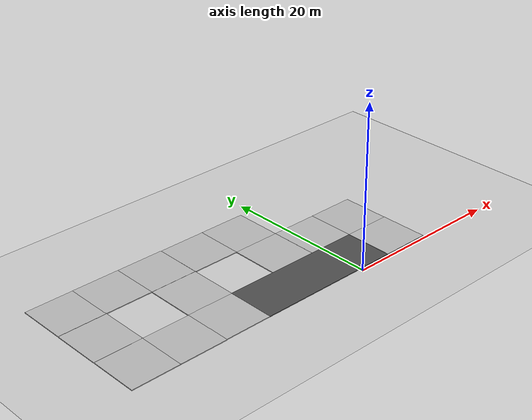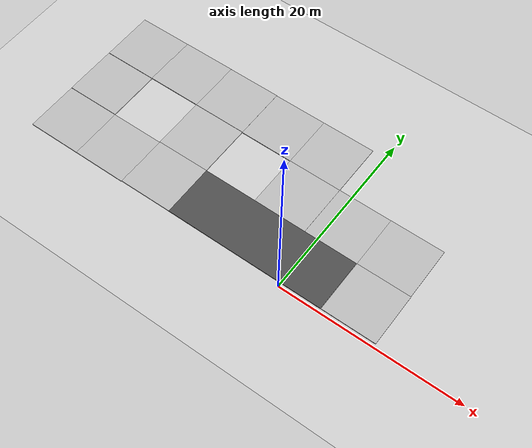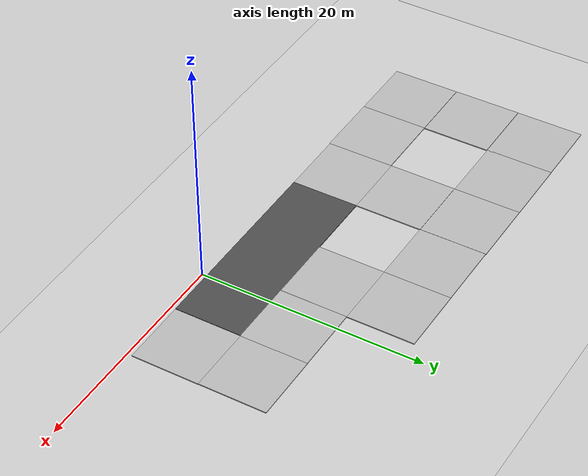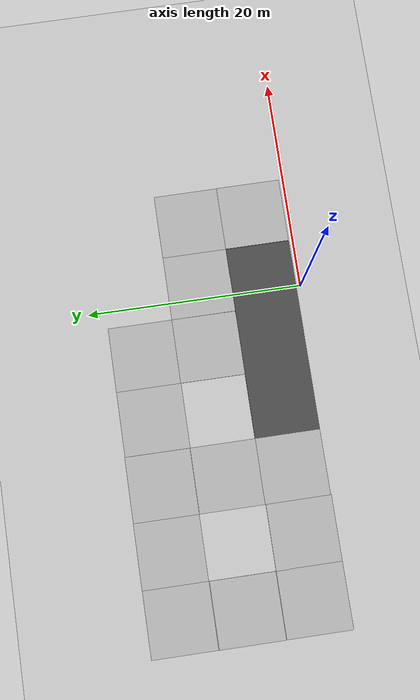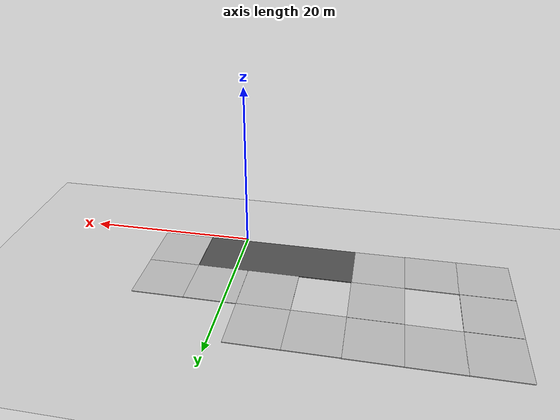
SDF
<sdf version="1.7">
 <world name="default">
  <light name="sun" type="directional">
   <cast_shadows>0</cast_shadows>
   <pose>0 0 10 0 -0 0</pose>
   <diffuse>0.8 0.8 0.8 1</diffuse>
   <specular>0.2 0.2 0.2 1</specular>
   <attenuation>
    <range>1000</range>
    <constant>0.9</constant>
    <linear>0.01</linear>
    <quadratic>0.001</quadratic>
   </attenuation>
   <direction>-0.5 0.1 -0.9</direction>
   <spot><inner_angle>0</inner_angle><outer_angle>0</outer_angle><falloff>0</falloff></spot>
  </light>
  <model name="ground_plane">
   <static>1</static>
   <link name="link">
    <collision name="collision">
     <geometry><plane><normal>0 0 1</normal><size>100 100</size></plane></geometry>
     <surface><friction><ode><mu>100</mu><mu2>50</mu2></ode></friction></surface>
    </collision>
    <visual name="visual">
     <cast_shadows>0</cast_shadows>
     <geometry><plane><normal>0 0 1</normal><size>100 100</size></plane></geometry>
     <material>
      <script><uri>file://media/materials/scripts/gazebo.material</uri><name>Gazebo/Grey</name></script>
     </material>
    </visual>
   </link>
  </model>
  <physics name="ode_70iters" type="ode">
   <real_time_update_rate>1000</real_time_update_rate>
   <ode>
    <solver>
     <type>quick</type>
     <iters>70</iters>
     <sor>1.3</sor>
     <use_dynamic_moi_rescaling>0</use_dynamic_moi_rescaling>
    </solver>
    <constraints>
     <cfm>0</cfm>
     <erp>0.2</erp>
     <contact_max_correcting_vel>100</contact_max_correcting_vel>
     <contact_surface_layer>0.001</contact_surface_layer>
    </constraints>
   </ode>
   <max_step_size>0.001</max_step_size>
   <real_time_factor>1</real_time_factor>
  </physics>
  <scene><ambient>0.4 0.4 0.4 1</ambient><background>0.7 0.7 0.7 1</background><shadows>1</shadows></scene>
  <spherical_coordinates>
   <surface_model>EARTH_WGS84</surface_model>
   <latitude_deg>0</latitude_deg>
   <longitude_deg>0</longitude_deg>
   <elevation>0</elevation>
   <heading_deg>0</heading_deg>
  </spherical_coordinates>
  <model name="road_plane_3">
   <static>1</static>
   <link name="link">
    <collision name="collision"><geometry><box><size>18 6 0.1</size></box></geometry></collision>
    <visual name="visual">
     <cast_shadows>0</cast_shadows>
     <geometry><box><size>18 6 0.1</size></box></geometry>
     <material>
      <script>
       <uri>model://road_plane_3/materials/scripts</uri>
       <uri>model://road_plane_3/materials/textures</uri>
       <name>vrc/road3</name>
      </script>
     </material>
    </visual>
   </link>
   <pose>-4.53361 3.40036 0 0 -0 0</pose>
  </model>
  <model name="road_inter">
   <static>1</static>
   <link name="link">
    <collision name="collision"><geometry><box><size>6 6 0.1</size></box></geometry></collision>
    <visual name="visual">
     <cast_shadows>0</cast_shadows>
     <geometry><box><size>6 6 0.1</size></box></geometry>
     <material>
      <script>
       <uri>model://road_inter/materials/scripts</uri>
       <uri>model://road_inter/materials/textures</uri>
       <name>vrc/inter</name>
      </script>
     </material>
    </visual>
   </link>
   <pose>-16.48 3.39921 0 0 -0 1.57449</pose>
  </model>
  <model name="road_plane">
   <static>1</static>
   <link name="link">
    <collision name="collision"><geometry><box><size>6 6 0.1</size></box></geometry></collision>
    <visual name="visual">
     <cast_shadows>0</cast_shadows>
     <geometry><box><size>6 6 0.1</size></box></geometry>
     <material>
      <script>
       <uri>model://road_plane/materials/scripts</uri>
       <uri>model://road_plane/materials/textures</uri>
       <name>vrc/plane</name>
      </script>
     </material>
    </visual>
   </link>
   <pose>-22.4501 3.33489 0 0 -0 0</pose>
  </model>
  <model name="road_plane_0">
   <static>1</static>
   <link name="link">
    <collision name="collision"><geometry><box><size>6 6 0.1</size></box></geometry></collision>
    <visual name="visual">
     <cast_shadows>0</cast_shadows>
     <geometry><box><size>6 6 0.1</size></box></geometry>
     <material>
      <script>
       <uri>model://road_plane/materials/scripts</uri>
       <uri>model://road_plane/materials/textures</uri>
       <name>vrc/plane</name>
      </script>
     </material>
    </visual>
   </link>
   <pose>-16.4942 9.38085 0 0 0 -1.57067</pose>
  </model>
  <model name="road_inter_0">
   <static>1</static>
   <link name="link">
    <collision name="collision"><geometry><box><size>6 6 0.1</size></box></geometry></collision>
    <visual name="visual">
     <cast_shadows>0</cast_shadows>
     <geometry><box><size>6 6 0.1</size></box></geometry>
     <material>
      <script>
       <uri>model://road_inter/materials/scripts</uri>
       <uri>model://road_inter/materials/textures</uri>
       <name>vrc/inter</name>
      </script>
     </material>
    </visual>
   </link>
   <pose>-16.4964 15.4013 0 0 0 -1.57121</pose>
  </model>
  <model name="road_plane_1">
   <static>1</static>
   <link name="link">
    <collision name="collision"><geometry><box><size>6 6 0.1</size></box></geometry></collision>
    <visual name="visual">
     <cast_shadows>0</cast_shadows>
     <geometry><box><size>6 6 0.1</size></box></geometry>
     <material>
      <script>
       <uri>model://road_plane/materials/scripts</uri>
       <uri>model://road_plane/materials/textures</uri>
       <name>vrc/plane</name>
      </script>
     </material>
    </visual>
   </link>
   <pose>-22.4897 15.4123 0 0 -0 0</pose>
  </model>
  <model name="road_plane_2">
   <static>1</static>
   <link name="link">
    <collision name="collision"><geometry><box><size>6 6 0.1</size></box></geometry></collision>
    <visual name="visual">
     <cast_shadows>0</cast_shadows>
     <geometry><box><size>6 6 0.1</size></box></geometry>
     <material>
      <script>
       <uri>model://road_plane/materials/scripts</uri>
       <uri>model://road_plane/materials/textures</uri>
       <name>vrc/plane</name>
      </script>
     </material>
    </visual>
   </link>
   <pose>-10.4917 15.3619 0 0 -0 0</pose>
  </model>
  <model name="road_diag">
   <static>1</static>
   <link name="link">
    <collision name="collision"><geometry><box><size>6 6 0.1</size></box></geometry></collision>
    <visual name="visual">
     <cast_shadows>0</cast_shadows>
     <geometry><box><size>6 6 0.1</size></box></geometry>
     <material>
      <script>
       <uri>model://road_diag/materials/scripts</uri>
       <uri>model://road_diag/materials/textures</uri>
       <name>vrc/diag</name>
      </script>
     </material>
    </visual>
   </link>
   <pose>7.51185 3.41249 -0 0 -0 0</pose>
  </model>
  <model name="road_diag_0">
   <static>1</static>
   <link name="link">
    <collision name="collision"><geometry><box><size>6 6 0.1</size></box></geometry></collision>
    <visual name="visual">
     <cast_shadows>0</cast_shadows>
     <geometry><box><size>6 6 0.1</size></box></geometry>
     <material>
      <script>
       <uri>model://road_diag/materials/scripts</uri>
       <uri>model://road_diag/materials/textures</uri>
       <name>vrc/diag</name>
      </script>
     </material>
    </visual>
   </link>
   <pose>7.48554 9.40514 0 0 -0 1.57232</pose>
  </model>
  <model name="road_plane_4">
   <static>1</static>
   <link name="link">
    <collision name="collision"><geometry><box><size>6 6 0.1</size></box></geometry></collision>
    <visual name="visual">
     <cast_shadows>0</cast_shadows>
     <geometry><box><size>6 6 0.1</size></box></geometry>
     <material>
      <script>
       <uri>model://road_plane/materials/scripts</uri>
       <uri>model://road_plane/materials/textures</uri>
       <name>vrc/plane</name>
      </script>
     </material>
    </visual>
   </link>
   <pose>1.50748 9.38453 0 0 -0 0</pose>
  </model>
  <model name="road_diag_1">
   <static>1</static>
   <link name="link">
    <collision name="collision"><geometry><box><size>6 6 0.1</size></box></geometry></collision>
    <visual name="visual">
     <cast_shadows>0</cast_shadows>
     <geometry><box><size>6 6 0.1</size></box></geometry>
     <material>
      <script>
       <uri>model://road_diag/materials/scripts</uri>
       <uri>model://road_diag/materials/textures</uri>
       <name>vrc/diag</name>
      </script>
     </material>
    </visual>
   </link>
   <pose>-4.49808 9.38913 0 0 0 -1.57191</pose>
  </model>
  <model name="road_diag_2">
   <static>1</static>
   <link name="link">
    <collision name="collision"><geometry><box><size>6 6 0.1</size></box></geometry></collision>
    <visual name="visual">
     <cast_shadows>0</cast_shadows>
     <geometry><box><size>6 6 0.1</size></box></geometry>
     <material>
      <script>
       <uri>model://road_diag/materials/scripts</uri>
       <uri>model://road_diag/materials/textures</uri>
       <name>vrc/diag</name>
      </script>
     </material>
    </visual>
   </link>
   <pose>-4.49564 15.3704 0 0 -0 1.57081</pose>
  </model>
  <model name="road_diag_3">
   <static>1</static>
   <link name="link">
    <collision name="collision"><geometry><box><size>6 6 0.1</size></box></geometry></collision>
    <visual name="visual">
     <cast_shadows>0</cast_shadows>
     <geometry><box><size>6 6 0.1</size></box></geometry>
     <material>
      <script>
       <uri>model://road_diag/materials/scripts</uri>
       <uri>model://road_diag/materials/textures</uri>
       <name>vrc/diag</name>
      </script>
     </material>
    </visual>
   </link>
   <pose>-28.4366 15.3954 0 0 0 -3.14038</pose>
  </model>
  <model name="road_diag_4">
   <static>1</static>
   <link name="link">
    <collision name="collision"><geometry><box><size>6 6 0.1</size></box></geometry></collision>
    <visual name="visual">
     <cast_shadows>0</cast_shadows>
     <geometry><box><size>6 6 0.1</size></box></geometry>
     <material>
      <script>
       <uri>model://road_diag/materials/scripts</uri>
       <uri>model://road_diag/materials/textures</uri>
       <name>vrc/diag</name>
      </script>
     </material>
    </visual>
   </link>
   <pose>-28.4092 3.32536 0 0 0 -1.56894</pose>
  </model>
  <model name="road_plane_5">
   <static>1</static>
   <link name="link">
    <collision name="collision"><geometry><box><size>6 6 0.1</size></box></geometry></collision>
    <visual name="visual">
     <cast_shadows>0</cast_shadows>
     <geometry><box><size>6 6 0.1</size></box></geometry>
     <material>
      <script>
       <uri>model://road_plane/materials/scripts</uri>
       <uri>model://road_plane/materials/textures</uri>
       <name>vrc/plane</name>
      </script>
     </material>
    </visual>
   </link>
   <pose>-28.4374 9.35673 0 0 0 -1.56904</pose>
  </model>
  <gravity>0 0 -9.8</gravity>
  <magnetic_field>6e-06 2.3e-05 -4.2e-05</magnetic_field>
  <atmosphere type="adiabatic"/>
  <audio><device>default</device></audio>
 </world>
</sdf>
